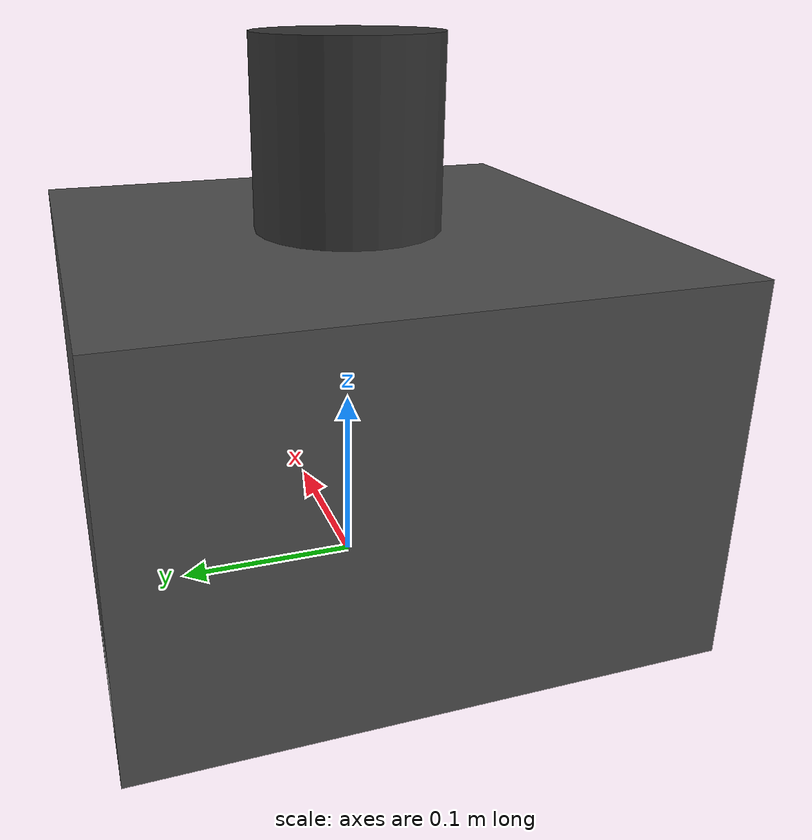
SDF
<?xml version="1.0" ?>
<sdf version="1.6">
  <model name="TinyRobot">
    <pose>0 0 0 0 0 0</pose>

    <!-- Robot base link -->
    <link name="base_link">
      <pose>0 0 0.1 0 0 0</pose>
      <inertial>
        <mass>1.0</mass>
        <inertia>
          <ixx>0.01</ixx>
          <iyy>0.01</iyy>
          <izz>0.01</izz>
        </inertia>
      </inertial>

      <visual name="base_visual">
        <geometry>
          <box>
            <size>0.3 0.3 0.2</size>
          </box>
        </geometry>
        <material>
          <ambient>0.2 0.2 0.2 1</ambient>
          <diffuse>0.3 0.3 0.3 1</diffuse>
        </material>
      </visual>

      <collision name="base_collision">
        <geometry>
          <box>
            <size>0.3 0.3 0.2</size>
          </box>
        </geometry>
      </collision>
    </link>

    <!-- Lidar link -->
    <link name="lidar_link">
      <pose>0 0 0.25 0 0 0</pose>
      <inertial>
        <mass>0.1</mass>
        <inertia>
          <ixx>0.001</ixx>
          <iyy>0.001</iyy>
          <izz>0.001</izz>
        </inertia>
      </inertial>

      <visual name="lidar_visual">
        <geometry>
          <cylinder>
            <radius>0.05</radius>
            <length>0.1</length>
          </cylinder>
        </geometry>
        <material>
          <ambient>0.1 0.1 0.1 1</ambient>
          <diffuse>0.2 0.2 0.2 1</diffuse>
        </material>
      </visual>

      <collision name="lidar_collision">
        <geometry>
          <cylinder>
            <radius>0.05</radius>
            <length>0.1</length>
          </cylinder>
        </geometry>
      </collision>

      <!-- 2D Lidar sensor -->
      <sensor name="lidar" type="ray">
        <pose>0 0 0.05 0 0 0</pose>
        <always_on>true</always_on>
        <update_rate>10</update_rate>
        <visualize>true</visualize>

        <ray>
          <scan>
            <horizontal>
              <samples>360</samples>
              <resolution>1</resolution>
              <min_angle>-3.14159</min_angle>
              <max_angle>3.14159</max_angle>
            </horizontal>
          </scan>
          <range>
            <min>0.1</min>
            <max>10.0</max>
            <resolution>0.01</resolution>
          </range>
          <noise>
            <type>gaussian</type>
            <mean>0.0</mean>
            <stddev>0.01</stddev>
          </noise>
        </ray>

        <plugin name="gazebo_ros_ray" filename="libgazebo_ros_ray.so">
          <ros>
            <namespace></namespace>
            <argument>~/out:=scan</argument>
          </ros>
          <output_type>sensor_msgs/LaserScan</output_type>
          <frame_name>lidar_link</frame_name>
        </plugin>
      </sensor>
    </link>

    <!-- Joint connecting base to lidar -->
    <joint name="lidar_joint" type="fixed">
      <parent>base_link</parent>
      <child>lidar_link</child>
    </joint>

    <!-- Differential drive plugin for movement -->
    <plugin name="differential_drive" filename="libgazebo_ros_diff_drive.so">
      <ros>
        <namespace></namespace>
        <argument>cmd_vel:=cmd_vel</argument>
        <argument>odom:=odom</argument>
      </ros>

      <!-- Wheel configuration -->
      <left_joint>left_wheel_joint</left_joint>
      <right_joint>right_wheel_joint</right_joint>

      <wheel_separation>0.25</wheel_separation>
      <wheel_diameter>0.1</wheel_diameter>

      <!-- Kinematics -->
      <max_wheel_torque>200</max_wheel_torque>
      <max_wheel_acceleration>10.0</max_wheel_acceleration>

      <!-- Output -->
      <publish_odom>true</publish_odom>
      <publish_odom_tf>true</publish_odom_tf>
      <publish_wheel_tf>true</publish_wheel_tf>

      <odometry_frame>odom</odometry_frame>
      <robot_base_frame>base_link</robot_base_frame>
    </plugin>

    <!-- Left wheel -->
    <link name="left_wheel">
      <pose>-0.1 0.125 0.05 1.5708 0 0</pose>
      <inertial>
        <mass>0.5</mass>
        <inertia>
          <ixx>0.01</ixx>
          <iyy>0.01</iyy>
          <izz>0.01</izz>
        </inertia>
      </inertial>
      <visual name="left_wheel_visual">
        <geometry>
          <cylinder>
            <radius>0.05</radius>
            <length>0.05</length>
          </cylinder>
        </geometry>
      </visual>
      <collision name="left_wheel_collision">
        <geometry>
          <cylinder>
            <radius>0.05</radius>
            <length>0.05</length>
          </cylinder>
        </geometry>
      </collision>
    </link>

    <!-- Right wheel -->
    <link name="right_wheel">
      <pose>-0.1 -0.125 0.05 1.5708 0 0</pose>
      <inertial>
        <mass>0.5</mass>
        <inertia>
          <ixx>0.01</ixx>
          <iyy>0.01</iyy>
          <izz>0.01</izz>
        </inertia>
      </inertial>
      <visual name="right_wheel_visual">
        <geometry>
          <cylinder>
            <radius>0.05</radius>
            <length>0.05</length>
          </cylinder>
        </geometry>
      </visual>
      <collision name="right_wheel_collision">
        <geometry>
          <cylinder>
            <radius>0.05</radius>
            <length>0.05</length>
          </cylinder>
        </geometry>
      </collision>
    </link>

    <!-- Wheel joints -->
    <joint name="left_wheel_joint" type="revolute">
      <parent>base_link</parent>
      <child>left_wheel</child>
      <axis>
        <xyz>0 0 1</xyz>
      </axis>
    </joint>

    <joint name="right_wheel_joint" type="revolute">
      <parent>base_link</parent>
      <child>right_wheel</child>
      <axis>
        <xyz>0 0 1</xyz>
      </axis>
    </joint>
  </model>
</sdf>
